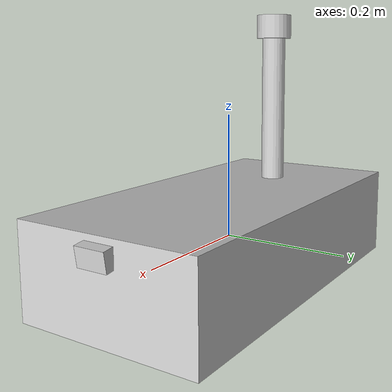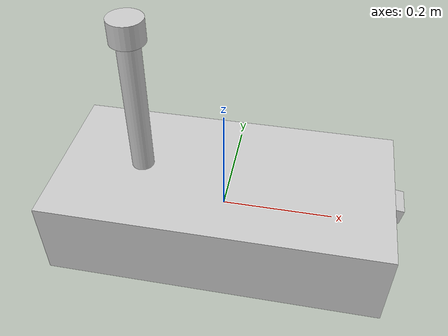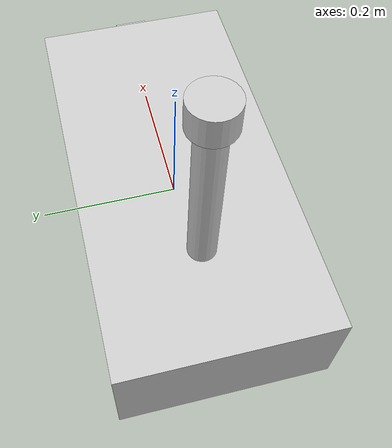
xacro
<?xml version="1.0"?>
<robot name="asv" xmlns:xacro="http://www.ros.org/wiki/xacro">

  <xacro:arg name="robot_name" default="asv"/>
  <xacro:arg name="color_r" default="0.8"/>
  <xacro:arg name="color_g" default="0.8"/>
  <xacro:arg name="color_b" default="0.8"/>

  <xacro:include filename="$(find asv_fleet)/urdf/asv_macro.xacro"/>

  <xacro:asv robot_name="$(arg robot_name)"
             color_r="$(arg color_r)"
             color_g="$(arg color_g)"
             color_b="$(arg color_b)"/>

</robot>

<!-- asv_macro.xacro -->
<robot xmlns:xacro="http://www.ros.org/wiki/xacro">

  <xacro:macro name="asv" params="robot_name color_r color_g color_b">

    <material name="${robot_name}_hull_color">
      <color rgba="${color_r} ${color_g} ${color_b} 1.0"/>
    </material>

    <!-- ===================== HULL / base_link ===================== -->
    <link name="${robot_name}_base_link">
      <visual>
        <origin xyz="0 0 0" rpy="0 0 0"/>
        <geometry>
          <box size="0.6 0.3 0.15"/>
        </geometry>
        <material name="${robot_name}_hull_color"/>
      </visual>
      <collision>
        <origin xyz="0 0 0" rpy="0 0 0"/>
        <geometry>
          <box size="0.6 0.3 0.15"/>
        </geometry>
      </collision>
      <inertial>
        <mass value="5.0"/>
        <origin xyz="0 0 0" rpy="0 0 0"/>
        <inertia ixx="0.0388" ixy="0.0" ixz="0.0"
                 iyy="0.165"  iyz="0.0"
                 izz="0.1925"/>
      </inertial>
    </link>

    <!-- ===================== MAST (holds the lidar up high) ===================== -->
    <link name="${robot_name}_mast_link">
      <visual>
        <origin xyz="0 0 0.125" rpy="0 0 0"/>
        <geometry>
          <cylinder radius="0.02" length="0.25"/>
        </geometry>
        <material name="${robot_name}_hull_color"/>
      </visual>
      <collision>
        <origin xyz="0 0 0.125" rpy="0 0 0"/>
        <geometry>
          <cylinder radius="0.02" length="0.25"/>
        </geometry>
      </collision>
      <inertial>
        <mass value="0.1"/>
        <origin xyz="0 0 0.125" rpy="0 0 0"/>
        <inertia ixx="0.001" ixy="0" ixz="0" iyy="0.001" iyz="0" izz="0.0001"/>
      </inertial>
    </link>

    <joint name="${robot_name}_mast_joint" type="fixed">
      <parent link="${robot_name}_base_link"/>
      <child link="${robot_name}_mast_link"/>
      <!-- mounted slightly behind center, like a real ASV sensor tower -->
      <origin xyz="-0.15 0 0.075" rpy="0 0 0"/>
    </joint>

    <!-- ===================== LIDAR (top of mast, 360 deg view) ===================== -->
    <link name="${robot_name}_lidar_link">
      <visual>
        <geometry><cylinder radius="0.03" length="0.04"/></geometry>
        <material name="${robot_name}_hull_color"/>
      </visual>
      <collision>
        <geometry><cylinder radius="0.03" length="0.04"/></geometry>
      </collision>
      <inertial>
        <mass value="0.05"/>
        <inertia ixx="0.0001" ixy="0" ixz="0" iyy="0.0001" iyz="0" izz="0.0001"/>
      </inertial>
    </link>

    <joint name="${robot_name}_lidar_joint" type="fixed">
      <parent link="${robot_name}_mast_link"/>
      <child link="${robot_name}_lidar_link"/>
      <origin xyz="0 0 0.27" rpy="0 0 0"/>
    </joint>

    <!-- ===================== RGB CAMERA (bow-mounted, angled down) ===================== -->
    <link name="${robot_name}_camera_link">
      <visual>
        <geometry><box size="0.03 0.05 0.03"/></geometry>
        <material name="${robot_name}_hull_color"/>
      </visual>
      <collision>
        <geometry><box size="0.03 0.05 0.03"/></geometry>
      </collision>
      <inertial>
        <mass value="0.05"/>
        <inertia ixx="0.00001" ixy="0" ixz="0" iyy="0.00001" iyz="0" izz="0.00001"/>
      </inertial>
    </link>

    <joint name="${robot_name}_camera_joint" type="fixed">
      <parent link="${robot_name}_base_link"/>
      <child link="${robot_name}_camera_link"/>
      <!-- bow-mounted, tilted down ~8.5 deg so the water ahead is in frame -->
      <origin xyz="0.3 0 0.05" rpy="0 0.15 0"/>
    </joint>

    <link name="${robot_name}_camera_optical_link"/>
    <joint name="${robot_name}_camera_optical_joint" type="fixed">
      <parent link="${robot_name}_camera_link"/>
      <child link="${robot_name}_camera_optical_link"/>
      <origin xyz="0 0 0" rpy="${-pi/2} 0 ${-pi/2}"/>
    </joint>

    <!-- ============================================================
         GAZEBO-SPECIFIC EXTENSIONS
         ============================================================ -->

    <gazebo reference="${robot_name}_base_link">
      <kinematic>true</kinematic>
    </gazebo>

    <!-- Movement: cmd_vel -> direct x/y/yaw velocity on the hull.
         This is why we don't need wheel joints - a boat has none,
         and gazebo_ros_planar_move drives the link directly. -->
    <gazebo>
      <plugin name="${robot_name}_planar_move" filename="libgazebo_ros_planar_move.so">
        <ros>
          <namespace>${robot_name}</namespace>
        </ros>
        <update_rate>30</update_rate>
        <publish_odom>true</publish_odom>
        <publish_odom_tf>true</publish_odom_tf>
        <command_topic>cmd_vel</command_topic>
        <odometry_topic>odom</odometry_topic>
        <odometry_frame>${robot_name}_odom</odometry_frame>
        <robot_base_frame>${robot_name}_base_link</robot_base_frame>
        <covariance_x>0.0001</covariance_x>
        <covariance_y>0.0001</covariance_y>
        <covariance_yaw>0.01</covariance_yaw>
      </plugin>
    </gazebo>

    <!-- RGB camera sensor -->
    <gazebo reference="${robot_name}_camera_link">
      <sensor type="camera" name="${robot_name}_rgb_camera">
        <update_rate>15.0</update_rate>
        <camera name="head">
          <horizontal_fov>1.3962634</horizontal_fov>
          <image>
            <width>640</width>
            <height>480</height>
            <format>R8G8B8</format>
          </image>
          <clip>
            <near>0.05</near>
            <far>50</far>
          </clip>
        </camera>
        <plugin name="${robot_name}_camera_controller" filename="libgazebo_ros_camera.so">
          <ros>
            <namespace>${robot_name}</namespace>
            <remapping>image_raw:=camera/image_raw</remapping>
            <remapping>camera_info:=camera/camera_info</remapping>
          </ros>
          <camera_name>${robot_name}_camera</camera_name>
          <frame_name>${robot_name}_camera_optical_link</frame_name>
        </plugin>
      </sensor>
    </gazebo>

    <!-- 2D Lidar sensor -->
    <gazebo reference="${robot_name}_lidar_link">
      <sensor type="ray" name="${robot_name}_lidar_sensor">
        <pose>0 0 0 0 0 0</pose>
        <visualize>true</visualize>
        <update_rate>10</update_rate>
        <ray>
          <scan>
            <horizontal>
              <samples>360</samples>
              <resolution>1</resolution>
              <min_angle>-3.14159</min_angle>
              <max_angle>3.14159</max_angle>
            </horizontal>
          </scan>
          <range>
            <min>0.12</min>
            <max>15.0</max>
            <resolution>0.01</resolution>
          </range>
          <noise>
            <type>gaussian</type>
            <mean>0.0</mean>
            <stddev>0.01</stddev>
          </noise>
        </ray>
        <plugin name="${robot_name}_lidar_controller" filename="libgazebo_ros_ray_sensor.so">
          <ros>
            <namespace>${robot_name}</namespace>
            <remapping>~/out:=scan</remapping>
          </ros>
          <output_type>sensor_msgs/LaserScan</output_type>
          <frame_name>${robot_name}_lidar_link</frame_name>
        </plugin>
      </sensor>
    </gazebo>

  </xacro:macro>
</robot>
